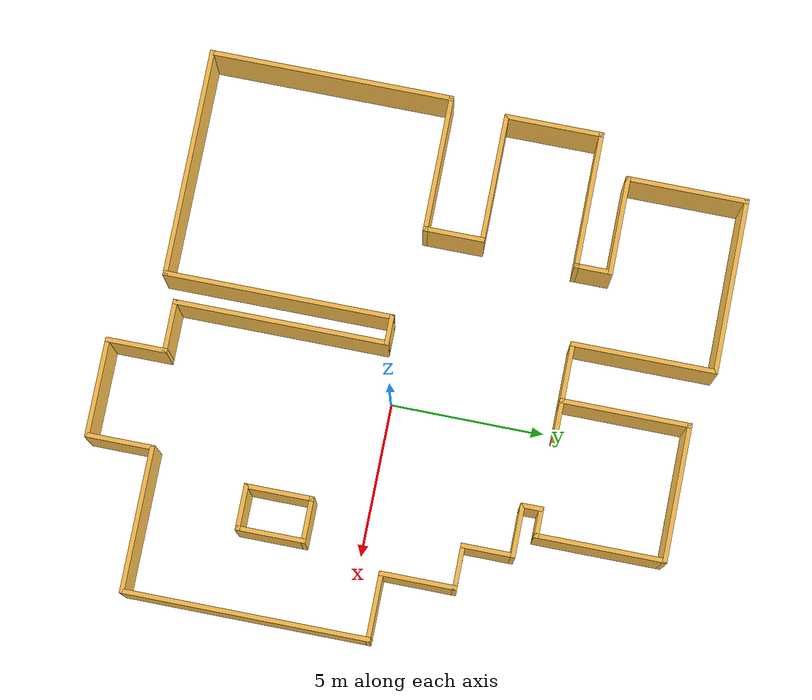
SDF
<?xml version='1.0'?>
<sdf version='1.6'>
  <model name='map_112'>
    <pose frame=''>-1.06547 0.402491 0 0 -0 0</pose>
    <link name='Wall_10'>
      <collision name='Wall_10_Collision'>
        <geometry>
          <box>
            <size>1.25 0.15 2.5</size>
          </box>
        </geometry>
        <pose frame=''>0 0 1.25 0 -0 0</pose>
      </collision>
      <visual name='Wall_10_Visual'>
        <pose frame=''>0 0 1.25 0 -0 0</pose>
        <geometry>
          <box>
            <size>1.25 0.15 2.5</size>
          </box>
        </geometry>
        <material>
          <script>
            <uri>file://media/materials/scripts/gazebo.material</uri>
            <name>Gazebo/Grey</name>
          </script>
          <ambient>1 0.764706 0.305882 1</ambient>
        </material>
        <meta>
          <layer>0</layer>
        </meta>
      </visual>
      <pose frame=''>-4.15 5.15 0 0 -0 -1.5708</pose>
    </link>
    <link name='Wall_11'>
      <collision name='Wall_11_Collision'>
        <geometry>
          <box>
            <size>4.5 0.15 2.5</size>
          </box>
        </geometry>
        <pose frame=''>0 0 1.25 0 -0 0</pose>
      </collision>
      <visual name='Wall_11_Visual'>
        <pose frame=''>0 0 1.25 0 -0 0</pose>
        <geometry>
          <box>
            <size>4.5 0.15 2.5</size>
          </box>
        </geometry>
        <material>
          <script>
            <uri>file://media/materials/scripts/gazebo.material</uri>
            <name>Gazebo/Grey</name>
          </script>
          <ambient>1 0.764706 0.305882 1</ambient>
        </material>
        <meta>
          <layer>0</layer>
        </meta>
      </visual>
      <pose frame=''>-6.325 4.6 0 0 -0 3.14159</pose>
    </link>
    <link name='Wall_12'>
      <collision name='Wall_12_Collision'>
        <geometry>
          <box>
            <size>3.25 0.15 2.5</size>
          </box>
        </geometry>
        <pose frame=''>0 0 1.25 0 -0 0</pose>
      </collision>
      <visual name='Wall_12_Visual'>
        <pose frame=''>0 0 1.25 0 -0 0</pose>
        <geometry>
          <box>
            <size>3.25 0.15 2.5</size>
          </box>
        </geometry>
        <material>
          <script>
            <uri>file://media/materials/scripts/gazebo.material</uri>
            <name>Gazebo/Grey</name>
          </script>
          <ambient>1 0.764706 0.305882 1</ambient>
        </material>
        <meta>
          <layer>0</layer>
        </meta>
      </visual>
      <pose frame=''>-8.5 3.05 0 0 -0 -1.5708</pose>
    </link>
    <link name='Wall_13'>
      <collision name='Wall_13_Collision'>
        <geometry>
          <box>
            <size>4.25 0.15 2.5</size>
          </box>
        </geometry>
        <pose frame=''>0 0 1.25 0 -0 0</pose>
      </collision>
      <visual name='Wall_13_Visual'>
        <pose frame=''>0 0 1.25 0 -0 0</pose>
        <geometry>
          <box>
            <size>4.25 0.15 2.5</size>
          </box>
        </geometry>
        <material>
          <script>
            <uri>file://media/materials/scripts/gazebo.material</uri>
            <name>Gazebo/Grey</name>
          </script>
          <ambient>1 0.764706 0.305882 1</ambient>
        </material>
        <meta>
          <layer>0</layer>
        </meta>
      </visual>
      <pose frame=''>-6.45 1.5 0 0 -0 0</pose>
    </link>
    <link name='Wall_14'>
      <collision name='Wall_14_Collision'>
        <geometry>
          <box>
            <size>2 0.15 2.5</size>
          </box>
        </geometry>
        <pose frame=''>0 0 1.25 0 -0 0</pose>
      </collision>
      <visual name='Wall_14_Visual'>
        <pose frame=''>0 0 1.25 0 -0 0</pose>
        <geometry>
          <box>
            <size>2 0.15 2.5</size>
          </box>
        </geometry>
        <material>
          <script>
            <uri>file://media/materials/scripts/gazebo.material</uri>
            <name>Gazebo/Grey</name>
          </script>
          <ambient>1 0.764706 0.305882 1</ambient>
        </material>
        <meta>
          <layer>0</layer>
        </meta>
      </visual>
      <pose frame=''>-4.4 0.575 0 0 -0 -1.5708</pose>
    </link>
    <link name='Wall_15'>
      <collision name='Wall_15_Collision'>
        <geometry>
          <box>
            <size>4.5 0.15 2.5</size>
          </box>
        </geometry>
        <pose frame=''>0 0 1.25 0 -0 0</pose>
      </collision>
      <visual name='Wall_15_Visual'>
        <pose frame=''>0 0 1.25 0 -0 0</pose>
        <geometry>
          <box>
            <size>4.5 0.15 2.5</size>
          </box>
        </geometry>
        <material>
          <script>
            <uri>file://media/materials/scripts/gazebo.material</uri>
            <name>Gazebo/Grey</name>
          </script>
          <ambient>1 0.764706 0.305882 1</ambient>
        </material>
        <meta>
          <layer>0</layer>
        </meta>
      </visual>
      <pose frame=''>-6.575 -0.35 0 0 -0 3.14159</pose>
    </link>
    <link name='Wall_16'>
      <collision name='Wall_16_Collision'>
        <geometry>
          <box>
            <size>8 0.15 2.5</size>
          </box>
        </geometry>
        <pose frame=''>0 0 1.25 0 -0 0</pose>
      </collision>
      <visual name='Wall_16_Visual'>
        <pose frame=''>0 0 1.25 0 -0 0</pose>
        <geometry>
          <box>
            <size>8 0.15 2.5</size>
          </box>
        </geometry>
        <material>
          <script>
            <uri>file://media/materials/scripts/gazebo.material</uri>
            <name>Gazebo/Grey</name>
          </script>
          <ambient>1 0.764706 0.305882 1</ambient>
        </material>
        <meta>
          <layer>0</layer>
        </meta>
      </visual>
      <pose frame=''>-8.75 -4.275 0 0 -0 -1.5708</pose>
    </link>
    <link name='Wall_17'>
      <collision name='Wall_17_Collision'>
        <geometry>
          <box>
            <size>7.5 0.15 2.5</size>
          </box>
        </geometry>
        <pose frame=''>0 0 1.25 0 -0 0</pose>
      </collision>
      <visual name='Wall_17_Visual'>
        <pose frame=''>0 0 1.25 0 -0 0</pose>
        <geometry>
          <box>
            <size>7.5 0.15 2.5</size>
          </box>
        </geometry>
        <material>
          <script>
            <uri>file://media/materials/scripts/gazebo.material</uri>
            <name>Gazebo/Grey</name>
          </script>
          <ambient>1 0.764706 0.305882 1</ambient>
        </material>
        <meta>
          <layer>0</layer>
        </meta>
      </visual>
      <pose frame=''>-5.075 -8.2 0 0 -0 0</pose>
    </link>
    <link name='Wall_18'>
      <collision name='Wall_18_Collision'>
        <geometry>
          <box>
            <size>7.5 0.15 2.5</size>
          </box>
        </geometry>
        <pose frame=''>0 0 1.25 0 -0 0</pose>
      </collision>
      <visual name='Wall_18_Visual'>
        <pose frame=''>0 0 1.25 0 -0 0</pose>
        <geometry>
          <box>
            <size>7.5 0.15 2.5</size>
          </box>
        </geometry>
        <material>
          <script>
            <uri>file://media/materials/scripts/gazebo.material</uri>
            <name>Gazebo/Grey</name>
          </script>
          <ambient>1 0.764706 0.305882 1</ambient>
        </material>
        <meta>
          <layer>0</layer>
        </meta>
      </visual>
      <pose frame=''>-1.4 -4.525 0 0 -0 1.5708</pose>
    </link>
    <link name='Wall_19'>
      <collision name='Wall_19_Collision'>
        <geometry>
          <box>
            <size>1 0.15 2.5</size>
          </box>
        </geometry>
        <pose frame=''>0 0 1.25 0 -0 0</pose>
      </collision>
      <visual name='Wall_19_Visual'>
        <pose frame=''>0 0 1.25 0 -0 0</pose>
        <geometry>
          <box>
            <size>1 0.15 2.5</size>
          </box>
        </geometry>
        <material>
          <script>
            <uri>file://media/materials/scripts/gazebo.material</uri>
            <name>Gazebo/Grey</name>
          </script>
          <ambient>1 0.764706 0.305882 1</ambient>
        </material>
        <meta>
          <layer>0</layer>
        </meta>
      </visual>
      <pose frame=''>-0.975 -0.85 0 0 -0 0</pose>
    </link>
    <link name='Wall_20'>
      <collision name='Wall_20_Collision'>
        <geometry>
          <box>
            <size>7 0.15 2.5</size>
          </box>
        </geometry>
        <pose frame=''>0 0 1.25 0 -0 0</pose>
      </collision>
      <visual name='Wall_20_Visual'>
        <pose frame=''>0 0 1.25 0 -0 0</pose>
        <geometry>
          <box>
            <size>7 0.15 2.5</size>
          </box>
        </geometry>
        <material>
          <script>
            <uri>file://media/materials/scripts/gazebo.material</uri>
            <name>Gazebo/Grey</name>
          </script>
          <ambient>1 0.764706 0.305882 1</ambient>
        </material>
        <meta>
          <layer>0</layer>
        </meta>
      </visual>
      <pose frame=''>-0.55 -4.275 0 0 -0 -1.5708</pose>
    </link>
    <link name='Wall_21'>
      <collision name='Wall_21_Collision'>
        <geometry>
          <box>
            <size>1.75 0.15 2.5</size>
          </box>
        </geometry>
        <pose frame=''>0 0 1.25 0 -0 0</pose>
      </collision>
      <visual name='Wall_21_Visual'>
        <pose frame=''>0 0 1.25 0 -0 0</pose>
        <geometry>
          <box>
            <size>1.75 0.15 2.5</size>
          </box>
        </geometry>
        <material>
          <script>
            <uri>file://media/materials/scripts/gazebo.material</uri>
            <name>Gazebo/Grey</name>
          </script>
          <ambient>1 0.764706 0.305882 1</ambient>
        </material>
        <meta>
          <layer>0</layer>
        </meta>
      </visual>
      <pose frame=''>0.25 -7.7 0 0 -0 0</pose>
    </link>
    <link name='Wall_24'>
      <collision name='Wall_24_Collision'>
        <geometry>
          <box>
            <size>2 0.15 2.5</size>
          </box>
        </geometry>
        <pose frame=''>0 0 1.25 0 -0 0</pose>
      </collision>
      <visual name='Wall_24_Visual'>
        <pose frame=''>0 0 1.25 0 -0 0</pose>
        <geometry>
          <box>
            <size>2 0.15 2.5</size>
          </box>
        </geometry>
        <material>
          <script>
            <uri>file://media/materials/scripts/gazebo.material</uri>
            <name>Gazebo/Grey</name>
          </script>
          <ambient>1 0.764706 0.305882 1</ambient>
        </material>
        <meta>
          <layer>0</layer>
        </meta>
      </visual>
      <pose frame=''>1.05 -8.625 0 0 -0 -1.5708</pose>
    </link>
    <link name='Wall_25'>
      <collision name='Wall_25_Collision'>
        <geometry>
          <box>
            <size>3.25 0.15 2.5</size>
          </box>
        </geometry>
        <pose frame=''>0 0 1.25 0 -0 0</pose>
      </collision>
      <visual name='Wall_25_Visual'>
        <pose frame=''>0 0 1.25 0 -0 0</pose>
        <geometry>
          <box>
            <size>3.25 0.15 2.5</size>
          </box>
        </geometry>
        <material>
          <script>
            <uri>file://media/materials/scripts/gazebo.material</uri>
            <name>Gazebo/Grey</name>
          </script>
          <ambient>1 0.764706 0.305882 1</ambient>
        </material>
        <meta>
          <layer>0</layer>
        </meta>
      </visual>
      <pose frame=''>2.6 -9.55 0 0 -0 0</pose>
    </link>
    <link name='Wall_26'>
      <collision name='Wall_26_Collision'>
        <geometry>
          <box>
            <size>2.25 0.15 2.5</size>
          </box>
        </geometry>
        <pose frame=''>0 0 1.25 0 -0 0</pose>
      </collision>
      <visual name='Wall_26_Visual'>
        <pose frame=''>0 0 1.25 0 -0 0</pose>
        <geometry>
          <box>
            <size>2.25 0.15 2.5</size>
          </box>
        </geometry>
        <material>
          <script>
            <uri>file://media/materials/scripts/gazebo.material</uri>
            <name>Gazebo/Grey</name>
          </script>
          <ambient>1 0.764706 0.305882 1</ambient>
        </material>
        <meta>
          <layer>0</layer>
        </meta>
      </visual>
      <pose frame=''>4.15 -8.5 0 0 -0 1.5708</pose>
    </link>
    <link name='Wall_27'>
      <collision name='Wall_27_Collision'>
        <geometry>
          <box>
            <size>4.75 0.15 2.5</size>
          </box>
        </geometry>
        <pose frame=''>0 0 1.25 0 -0 0</pose>
      </collision>
      <visual name='Wall_27_Visual'>
        <pose frame=''>0 0 1.25 0 -0 0</pose>
        <geometry>
          <box>
            <size>4.75 0.15 2.5</size>
          </box>
        </geometry>
        <material>
          <script>
            <uri>file://media/materials/scripts/gazebo.material</uri>
            <name>Gazebo/Grey</name>
          </script>
          <ambient>1 0.764706 0.305882 1</ambient>
        </material>
        <meta>
          <layer>0</layer>
        </meta>
      </visual>
      <pose frame=''>6.45 -7.45 0 0 -0 0</pose>
    </link>
    <link name='Wall_28'>
      <collision name='Wall_28_Collision'>
        <geometry>
          <box>
            <size>8 0.15 2.5</size>
          </box>
        </geometry>
        <pose frame=''>0 0 1.25 0 -0 0</pose>
      </collision>
      <visual name='Wall_28_Visual'>
        <pose frame=''>0 0 1.25 0 -0 0</pose>
        <geometry>
          <box>
            <size>8 0.15 2.5</size>
          </box>
        </geometry>
        <material>
          <script>
            <uri>file://media/materials/scripts/gazebo.material</uri>
            <name>Gazebo/Grey</name>
          </script>
          <ambient>1 0.764706 0.305882 1</ambient>
        </material>
        <meta>
          <layer>0</layer>
        </meta>
      </visual>
      <pose frame=''>8.75 -3.525 0 0 -0 1.5708</pose>
    </link>
    <link name='Wall_29'>
      <collision name='Wall_29_Collision'>
        <geometry>
          <box>
            <size>2.25 0.15 2.5</size>
          </box>
        </geometry>
        <pose frame=''>0 0 1.25 0 -0 0</pose>
      </collision>
      <visual name='Wall_29_Visual'>
        <pose frame=''>0 0 1.25 0 -0 0</pose>
        <geometry>
          <box>
            <size>2.25 0.15 2.5</size>
          </box>
        </geometry>
        <material>
          <script>
            <uri>file://media/materials/scripts/gazebo.material</uri>
            <name>Gazebo/Grey</name>
          </script>
          <ambient>1 0.764706 0.305882 1</ambient>
        </material>
        <meta>
          <layer>0</layer>
        </meta>
      </visual>
      <pose frame=''>7.7 0.4 0 0 -0 3.14159</pose>
    </link>
    <link name='Wall_35'>
      <collision name='Wall_35_Collision'>
        <geometry>
          <box>
            <size>2.5 0.15 2.5</size>
          </box>
        </geometry>
        <pose frame=''>0 0 1.25 0 -0 0</pose>
      </collision>
      <visual name='Wall_35_Visual'>
        <pose frame=''>0 0 1.25 0 -0 0</pose>
        <geometry>
          <box>
            <size>2.5 0.15 2.5</size>
          </box>
        </geometry>
        <material>
          <script>
            <uri>file://media/materials/scripts/gazebo.material</uri>
            <name>Gazebo/Grey</name>
          </script>
          <ambient>1 0.764706 0.305882 1</ambient>
        </material>
        <meta>
          <layer>0</layer>
        </meta>
      </visual>
      <pose frame=''>6.65 1.575 0 0 -0 1.5708</pose>
    </link>
    <link name='Wall_36'>
      <collision name='Wall_36_Collision'>
        <geometry>
          <box>
            <size>1.5 0.15 2.5</size>
          </box>
        </geometry>
        <pose frame=''>0 0 1.25 0 -0 0</pose>
      </collision>
      <visual name='Wall_36_Visual'>
        <pose frame=''>0 0 1.25 0 -0 0</pose>
        <geometry>
          <box>
            <size>1.5 0.15 2.5</size>
          </box>
        </geometry>
        <material>
          <script>
            <uri>file://media/materials/scripts/gazebo.material</uri>
            <name>Gazebo/Grey</name>
          </script>
          <ambient>1 0.764706 0.305882 1</ambient>
        </material>
        <meta>
          <layer>0</layer>
        </meta>
      </visual>
      <pose frame=''>5.975 2.75 0 0 -0 3.14159</pose>
    </link>
    <link name='Wall_37'>
      <collision name='Wall_37_Collision'>
        <geometry>
          <box>
            <size>1.75 0.15 2.5</size>
          </box>
        </geometry>
        <pose frame=''>0 0 1.25 0 -0 0</pose>
      </collision>
      <visual name='Wall_37_Visual'>
        <pose frame=''>0 0 1.25 0 -0 0</pose>
        <geometry>
          <box>
            <size>1.75 0.15 2.5</size>
          </box>
        </geometry>
        <material>
          <script>
            <uri>file://media/materials/scripts/gazebo.material</uri>
            <name>Gazebo/Grey</name>
          </script>
          <ambient>1 0.764706 0.305882 1</ambient>
        </material>
        <meta>
          <layer>0</layer>
        </meta>
      </visual>
      <pose frame=''>5.3 3.55 0 0 -0 1.5708</pose>
    </link>
    <link name='Wall_42'>
      <collision name='Wall_42_Collision'>
        <geometry>
          <box>
            <size>1.75 0.15 2.5</size>
          </box>
        </geometry>
        <pose frame=''>0 0 1.25 0 -0 0</pose>
      </collision>
      <visual name='Wall_42_Visual'>
        <pose frame=''>0 0 1.25 0 -0 0</pose>
        <geometry>
          <box>
            <size>1.75 0.15 2.5</size>
          </box>
        </geometry>
        <material>
          <script>
            <uri>file://media/materials/scripts/gazebo.material</uri>
            <name>Gazebo/Grey</name>
          </script>
          <ambient>1 0.764706 0.305882 1</ambient>
        </material>
        <meta>
          <layer>0</layer>
        </meta>
      </visual>
      <pose frame=''>4.5 4.35 0 0 -0 3.14159</pose>
    </link>
    <link name='Wall_43'>
      <collision name='Wall_43_Collision'>
        <geometry>
          <box>
            <size>0.75 0.15 2.5</size>
          </box>
        </geometry>
        <pose frame=''>0 0 1.25 0 -0 0</pose>
      </collision>
      <visual name='Wall_43_Visual'>
        <pose frame=''>0 0 1.25 0 -0 0</pose>
        <geometry>
          <box>
            <size>0.75 0.15 2.5</size>
          </box>
        </geometry>
        <material>
          <script>
            <uri>file://media/materials/scripts/gazebo.material</uri>
            <name>Gazebo/Grey</name>
          </script>
          <ambient>1 0.764706 0.305882 1</ambient>
        </material>
        <meta>
          <layer>0</layer>
        </meta>
      </visual>
      <pose frame=''>3.7 4.65 0 0 -0 1.5708</pose>
    </link>
    <link name='Wall_44'>
      <collision name='Wall_44_Collision'>
        <geometry>
          <box>
            <size>1 0.15 2.5</size>
          </box>
        </geometry>
        <pose frame=''>0 0 1.25 0 -0 0</pose>
      </collision>
      <visual name='Wall_44_Visual'>
        <pose frame=''>0 0 1.25 0 -0 0</pose>
        <geometry>
          <box>
            <size>1 0.15 2.5</size>
          </box>
        </geometry>
        <material>
          <script>
            <uri>file://media/materials/scripts/gazebo.material</uri>
            <name>Gazebo/Grey</name>
          </script>
          <ambient>1 0.764706 0.305882 1</ambient>
        </material>
        <meta>
          <layer>0</layer>
        </meta>
      </visual>
      <pose frame=''>4.125 4.95 0 0 -0 0</pose>
    </link>
    <link name='Wall_45'>
      <collision name='Wall_45_Collision'>
        <geometry>
          <box>
            <size>4.25 0.15 2.5</size>
          </box>
        </geometry>
        <pose frame=''>0 0 1.25 0 -0 0</pose>
      </collision>
      <visual name='Wall_45_Visual'>
        <pose frame=''>0 0 1.25 0 -0 0</pose>
        <geometry>
          <box>
            <size>4.25 0.15 2.5</size>
          </box>
        </geometry>
        <material>
          <script>
            <uri>file://media/materials/scripts/gazebo.material</uri>
            <name>Gazebo/Grey</name>
          </script>
          <ambient>1 0.764706 0.305882 1</ambient>
        </material>
        <meta>
          <layer>0</layer>
        </meta>
      </visual>
      <pose frame=''>4.55 7 0 0 -0 1.5708</pose>
    </link>
    <link name='Wall_46'>
      <collision name='Wall_46_Collision'>
        <geometry>
          <box>
            <size>4.5 0.15 2.5</size>
          </box>
        </geometry>
        <pose frame=''>0 0 1.25 0 -0 0</pose>
      </collision>
      <visual name='Wall_46_Visual'>
        <pose frame=''>0 0 1.25 0 -0 0</pose>
        <geometry>
          <box>
            <size>4.5 0.15 2.5</size>
          </box>
        </geometry>
        <material>
          <script>
            <uri>file://media/materials/scripts/gazebo.material</uri>
            <name>Gazebo/Grey</name>
          </script>
          <ambient>1 0.764706 0.305882 1</ambient>
        </material>
        <meta>
          <layer>0</layer>
        </meta>
      </visual>
      <pose frame=''>2.375 9.05 0 0 -0 3.14159</pose>
    </link>
    <link name='Wall_47'>
      <collision name='Wall_47_Collision'>
        <geometry>
          <box>
            <size>4.25 0.15 2.5</size>
          </box>
        </geometry>
        <pose frame=''>0 0 1.25 0 -0 0</pose>
      </collision>
      <visual name='Wall_47_Visual'>
        <pose frame=''>0 0 1.25 0 -0 0</pose>
        <geometry>
          <box>
            <size>4.25 0.15 2.5</size>
          </box>
        </geometry>
        <material>
          <script>
            <uri>file://media/materials/scripts/gazebo.material</uri>
            <name>Gazebo/Grey</name>
          </script>
          <ambient>1 0.764706 0.305882 1</ambient>
        </material>
        <meta>
          <layer>0</layer>
        </meta>
      </visual>
      <pose frame=''>0.2 7 0 0 -0 -1.5708</pose>
    </link>
    <link name='Wall_48'>
      <collision name='Wall_48_Collision'>
        <geometry>
          <box>
            <size>1.25 0.15 2.5</size>
          </box>
        </geometry>
        <pose frame=''>0 0 1.25 0 -0 0</pose>
      </collision>
      <visual name='Wall_48_Visual'>
        <pose frame=''>0 0 1.25 0 -0 0</pose>
        <geometry>
          <box>
            <size>1.25 0.15 2.5</size>
          </box>
        </geometry>
        <material>
          <script>
            <uri>file://media/materials/scripts/gazebo.material</uri>
            <name>Gazebo/Grey</name>
          </script>
          <ambient>1 0.764706 0.305882 1</ambient>
        </material>
        <meta>
          <layer>0</layer>
        </meta>
      </visual>
      <pose frame=''>0.75 4.95 0 0 -0 0</pose>
    </link>
    <link name='Wall_52'>
      <collision name='Wall_52_Collision'>
        <geometry>
          <box>
            <size>5.75 0.15 2.5</size>
          </box>
        </geometry>
        <pose frame=''>0 0 1.25 0 -0 0</pose>
      </collision>
      <visual name='Wall_52_Visual'>
        <pose frame=''>0 0 1.25 0 -0 0</pose>
        <geometry>
          <box>
            <size>5.75 0.15 2.5</size>
          </box>
        </geometry>
        <material>
          <script>
            <uri>file://media/materials/scripts/gazebo.material</uri>
            <name>Gazebo/Grey</name>
          </script>
          <ambient>1 0.764706 0.305882 1</ambient>
        </material>
        <meta>
          <layer>0</layer>
        </meta>
      </visual>
      <pose frame=''>-4.45 9.55 0 0 -0 0</pose>
    </link>
    <link name='Wall_53'>
      <collision name='Wall_53_Collision'>
        <geometry>
          <box>
            <size>4.75 0.15 2.5</size>
          </box>
        </geometry>
        <pose frame=''>0 0 1.25 0 -0 0</pose>
      </collision>
      <visual name='Wall_53_Visual'>
        <pose frame=''>0 0 1.25 0 -0 0</pose>
        <geometry>
          <box>
            <size>4.75 0.15 2.5</size>
          </box>
        </geometry>
        <material>
          <script>
            <uri>file://media/materials/scripts/gazebo.material</uri>
            <name>Gazebo/Grey</name>
          </script>
          <ambient>1 0.764706 0.305882 1</ambient>
        </material>
        <meta>
          <layer>0</layer>
        </meta>
      </visual>
      <pose frame=''>-1.65 7.25 0 0 -0 -1.5708</pose>
    </link>
    <link name='Wall_54'>
      <collision name='Wall_54_Collision'>
        <geometry>
          <box>
            <size>2 0.15 2.5</size>
          </box>
        </geometry>
        <pose frame=''>0 0 1.25 0 -0 0</pose>
      </collision>
      <visual name='Wall_54_Visual'>
        <pose frame=''>0 0 1.25 0 -0 0</pose>
        <geometry>
          <box>
            <size>2 0.15 2.5</size>
          </box>
        </geometry>
        <material>
          <script>
            <uri>file://media/materials/scripts/gazebo.material</uri>
            <name>Gazebo/Grey</name>
          </script>
          <ambient>1 0.764706 0.305882 1</ambient>
        </material>
        <meta>
          <layer>0</layer>
        </meta>
      </visual>
      <pose frame=''>-0.725 4.95 0 0 -0 0</pose>
    </link>
    <link name='Wall_56'>
      <collision name='Wall_56_Collision'>
        <geometry>
          <box>
            <size>2.25 0.15 2.5</size>
          </box>
        </geometry>
        <pose frame=''>0 0 1.25 0 -0 0</pose>
      </collision>
      <visual name='Wall_56_Visual'>
        <pose frame=''>0 0 1.25 0 -0 0</pose>
        <geometry>
          <box>
            <size>2.25 0.15 2.5</size>
          </box>
        </geometry>
        <material>
          <script>
            <uri>file://media/materials/scripts/gazebo.material</uri>
            <name>Gazebo/Grey</name>
          </script>
          <ambient>1 0.764706 0.305882 1</ambient>
        </material>
        <meta>
          <layer>0</layer>
        </meta>
      </visual>
      <pose frame=''>4.77046 -3.24625 0 0 -0 -1.5708</pose>
    </link>
    <link name='Wall_57'>
      <collision name='Wall_57_Collision'>
        <geometry>
          <box>
            <size>1.5 0.15 2.5</size>
          </box>
        </geometry>
        <pose frame=''>0 0 1.25 0 -0 0</pose>
      </collision>
      <visual name='Wall_57_Visual'>
        <pose frame=''>0 0 1.25 0 -0 0</pose>
        <geometry>
          <box>
            <size>1.5 0.15 2.5</size>
          </box>
        </geometry>
        <material>
          <script>
            <uri>file://media/materials/scripts/gazebo.material</uri>
            <name>Gazebo/Grey</name>
          </script>
          <ambient>1 0.764706 0.305882 1</ambient>
        </material>
        <meta>
          <layer>0</layer>
        </meta>
      </visual>
      <pose frame=''>5.44545 -4.29624 0 0 -0 0</pose>
    </link>
    <link name='Wall_58'>
      <collision name='Wall_58_Collision'>
        <geometry>
          <box>
            <size>2.25 0.15 2.5</size>
          </box>
        </geometry>
        <pose frame=''>0 0 1.25 0 -0 0</pose>
      </collision>
      <visual name='Wall_58_Visual'>
        <pose frame=''>0 0 1.25 0 -0 0</pose>
        <geometry>
          <box>
            <size>2.25 0.15 2.5</size>
          </box>
        </geometry>
        <material>
          <script>
            <uri>file://media/materials/scripts/gazebo.material</uri>
            <name>Gazebo/Grey</name>
          </script>
          <ambient>1 0.764706 0.305882 1</ambient>
        </material>
        <meta>
          <layer>0</layer>
        </meta>
      </visual>
      <pose frame=''>6.12045 -3.24625 0 0 -0 1.5708</pose>
    </link>
    <link name='Wall_59'>
      <collision name='Wall_59_Collision'>
        <geometry>
          <box>
            <size>1.5 0.15 2.5</size>
          </box>
        </geometry>
        <pose frame=''>0 0 1.25 0 -0 0</pose>
      </collision>
      <visual name='Wall_59_Visual'>
        <pose frame=''>0 0 1.25 0 -0 0</pose>
        <geometry>
          <box>
            <size>1.5 0.15 2.5</size>
          </box>
        </geometry>
        <material>
          <script>
            <uri>file://media/materials/scripts/gazebo.material</uri>
            <name>Gazebo/Grey</name>
          </script>
          <ambient>1 0.764706 0.305882 1</ambient>
        </material>
        <meta>
          <layer>0</layer>
        </meta>
      </visual>
      <pose frame=''>5.44545 -2.19624 0 0 -0 3.14159</pose>
    </link>
    <link name='Wall_8'>
      <collision name='Wall_8_Collision'>
        <geometry>
          <box>
            <size>4 0.15 2.5</size>
          </box>
        </geometry>
        <pose frame=''>0 0 1.25 0 -0 0</pose>
      </collision>
      <visual name='Wall_8_Visual'>
        <pose frame=''>0 0 1.25 0 -0 0</pose>
        <geometry>
          <box>
            <size>4 0.15 2.5</size>
          </box>
        </geometry>
        <material>
          <script>
            <uri>file://media/materials/scripts/gazebo.material</uri>
            <name>Gazebo/Grey</name>
          </script>
          <ambient>1 0.764706 0.305882 1</ambient>
        </material>
        <meta>
          <layer>0</layer>
        </meta>
      </visual>
      <pose frame=''>-7.25 7.625 0 0 -0 -1.5708</pose>
    </link>
    <link name='Wall_9'>
      <collision name='Wall_9_Collision'>
        <geometry>
          <box>
            <size>3.25 0.15 2.5</size>
          </box>
        </geometry>
        <pose frame=''>0 0 1.25 0 -0 0</pose>
      </collision>
      <visual name='Wall_9_Visual'>
        <pose frame=''>0 0 1.25 0 -0 0</pose>
        <geometry>
          <box>
            <size>3.25 0.15 2.5</size>
          </box>
        </geometry>
        <material>
          <script>
            <uri>file://media/materials/scripts/gazebo.material</uri>
            <name>Gazebo/Grey</name>
          </script>
          <ambient>1 0.764706 0.305882 1</ambient>
        </material>
        <meta>
          <layer>0</layer>
        </meta>
      </visual>
      <pose frame=''>-5.7 5.7 0 0 -0 0</pose>
    </link>
    <static>1</static>
  </model>
</sdf>
